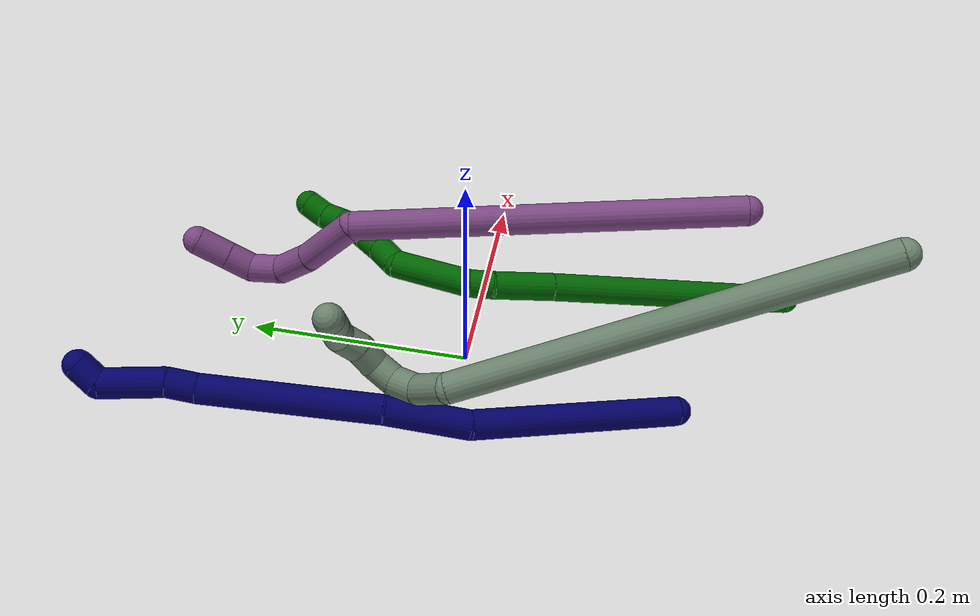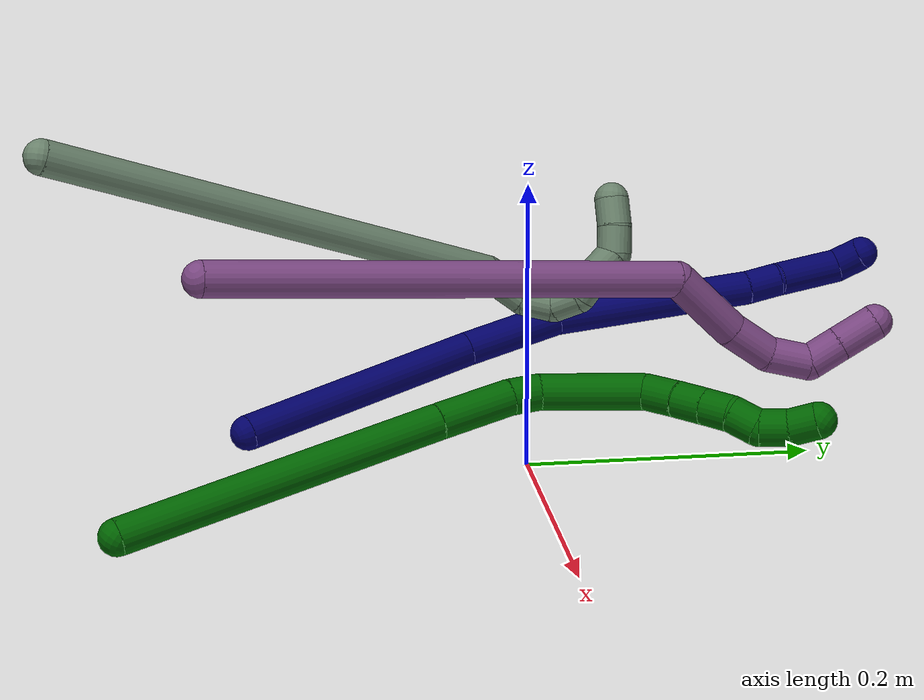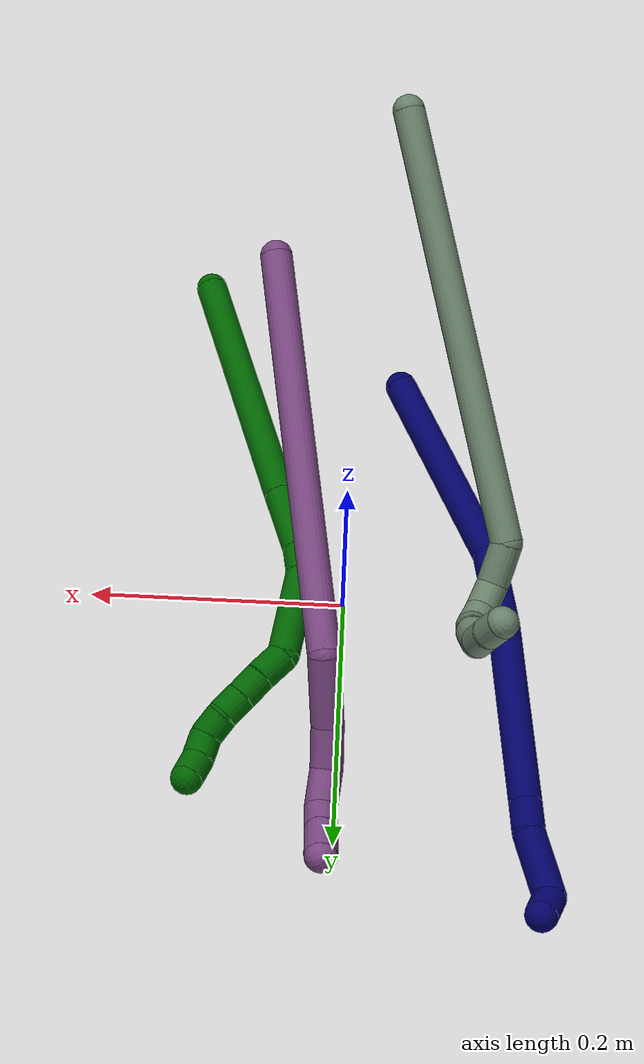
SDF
<sdf version="1.7">
 <world name="default">
  <model name="6">
   <static>0</static>
   <link name="6">
    <collision name="collision-cylinder-e_1_1_4">
     <pose>-0.00195 0.101689 -0.050878 -2.03471 -0.017151 0.027758</pose>
     <geometry><cylinder><radius>0.0125</radius><length>0.227447</length></cylinder></geometry>
     <surface>
      <friction><ode><mu>1.16</mu><mu2>1.16</mu2><slip1>0</slip1><slip2>0</slip2></ode></friction>
      <contact><ode><kp>1e+06</kp><kd>1</kd><max_vel>0</max_vel><min_depth>0.001</min_depth></ode></contact>
     </surface>
    </collision>
    <visual name="visual-cylinder-e_1_1_4">
     <pose>-0.00195 0.101689 -0.050878 -2.03471 -0.017151 0.027758</pose>
     <geometry><cylinder><radius>0.0125</radius><length>0.227447</length></cylinder></geometry>
     <material><ambient>0 0.392157 0.003922 1</ambient></material>
    </visual>
    <collision name="collision-cylinder-e_2_4_5">
     <pose>-0.005015 0.227575 -0.113925 -2.03676 -0.041133 0.066712</pose>
     <geometry><cylinder><radius>0.0125</radius><length>0.054216</length></cylinder></geometry>
     <surface>
      <friction><ode><mu>1.16</mu><mu2>1.16</mu2><slip1>0</slip1><slip2>0</slip2></ode></friction>
      <contact><ode><kp>1e+06</kp><kd>1</kd><max_vel>0</max_vel><min_depth>0.001</min_depth></ode></contact>
     </surface>
    </collision>
    <visual name="visual-cylinder-e_2_4_5">
     <pose>-0.005015 0.227575 -0.113925 -2.03676 -0.041133 0.066712</pose>
     <geometry><cylinder><radius>0.0125</radius><length>0.054216</length></cylinder></geometry>
     <material><ambient>0 0.392157 0.003922 1</ambient></material>
    </visual>
    <collision name="collision-cylinder-e_3_5_6">
     <pose>-0.006375 0.260324 -0.132549 -2.21745 -0.022864 0.045902</pose>
     <geometry><cylinder><radius>0.0125</radius><length>0.021433</length></cylinder></geometry>
     <surface>
      <friction><ode><mu>1.16</mu><mu2>1.16</mu2><slip1>0</slip1><slip2>0</slip2></ode></friction>
      <contact><ode><kp>1e+06</kp><kd>1</kd><max_vel>0</max_vel><min_depth>0.001</min_depth></ode></contact>
     </surface>
    </collision>
    <visual name="visual-cylinder-e_3_5_6">
     <pose>-0.006375 0.260324 -0.132549 -2.21745 -0.022864 0.045902</pose>
     <geometry><cylinder><radius>0.0125</radius><length>0.021433</length></cylinder></geometry>
     <material><ambient>0 0.392157 0.003922 1</ambient></material>
    </visual>
    <collision name="collision-cylinder-e_4_6_7">
     <pose>-0.00236 0.289609 -0.167507 -2.51268 0.120269 -0.366076</pose>
     <geometry><cylinder><radius>0.0125</radius><length>0.071008</length></cylinder></geometry>
     <surface>
      <friction><ode><mu>1.16</mu><mu2>1.16</mu2><slip1>0</slip1><slip2>0</slip2></ode></friction>
      <contact><ode><kp>1e+06</kp><kd>1</kd><max_vel>0</max_vel><min_depth>0.001</min_depth></ode></contact>
     </surface>
    </collision>
    <visual name="visual-cylinder-e_4_6_7">
     <pose>-0.00236 0.289609 -0.167507 -2.51268 0.120269 -0.366076</pose>
     <geometry><cylinder><radius>0.0125</radius><length>0.071008</length></cylinder></geometry>
     <material><ambient>0 0.392157 0.003922 1</ambient></material>
    </visual>
    <collision name="collision-cylinder-e_5_7_8">
     <pose>0.006979 0.311457 -0.207225 -3.04262 0.423475 -2.68871</pose>
     <geometry><cylinder><radius>0.0125</radius><length>0.024722</length></cylinder></geometry>
     <surface>
      <friction><ode><mu>1.16</mu><mu2>1.16</mu2><slip1>0</slip1><slip2>0</slip2></ode></friction>
      <contact><ode><kp>1e+06</kp><kd>1</kd><max_vel>0</max_vel><min_depth>0.001</min_depth></ode></contact>
     </surface>
    </collision>
    <visual name="visual-cylinder-e_5_7_8">
     <pose>0.006979 0.311457 -0.207225 -3.04262 0.423475 -2.68871</pose>
     <geometry><cylinder><radius>0.0125</radius><length>0.024722</length></cylinder></geometry>
     <material><ambient>0 0.392157 0.003922 1</ambient></material>
    </visual>
    <collision name="collision-cylinder-e_6_8_9">
     <pose>0.015746 0.313816 -0.228244 -3.01524 0.357119 -2.46733</pose>
     <geometry><cylinder><radius>0.0125</radius><length>0.021098</length></cylinder></geometry>
     <surface>
      <friction><ode><mu>1.16</mu><mu2>1.16</mu2><slip1>0</slip1><slip2>0</slip2></ode></friction>
      <contact><ode><kp>1e+06</kp><kd>1</kd><max_vel>0</max_vel><min_depth>0.001</min_depth></ode></contact>
     </surface>
    </collision>
    <visual name="visual-cylinder-e_6_8_9">
     <pose>0.015746 0.313816 -0.228244 -3.01524 0.357119 -2.46733</pose>
     <geometry><cylinder><radius>0.0125</radius><length>0.021098</length></cylinder></geometry>
     <material><ambient>0 0.392157 0.003922 1</ambient></material>
    </visual>
    <collision name="collision-cylinder-e_7_9_10">
     <pose>0.023033 0.316007 -0.247357 -3.04036 0.367275 -2.60903</pose>
     <geometry><cylinder><radius>0.0125</radius><length>0.02005</length></cylinder></geometry>
     <surface>
      <friction><ode><mu>1.16</mu><mu2>1.16</mu2><slip1>0</slip1><slip2>0</slip2></ode></friction>
      <contact><ode><kp>1e+06</kp><kd>1</kd><max_vel>0</max_vel><min_depth>0.001</min_depth></ode></contact>
     </surface>
    </collision>
    <visual name="visual-cylinder-e_7_9_10">
     <pose>0.023033 0.316007 -0.247357 -3.04036 0.367275 -2.60903</pose>
     <geometry><cylinder><radius>0.0125</radius><length>0.02005</length></cylinder></geometry>
     <material><ambient>0 0.392157 0.003922 1</ambient></material>
    </visual>
    <collision name="collision-cylinder-e_8_10_11">
     <pose>0.02785 0.317276 -0.266598 -3.10912 0.12189 -2.62147</pose>
     <geometry><cylinder><radius>0.0125</radius><length>0.020024</length></cylinder></geometry>
     <surface>
      <friction><ode><mu>1.16</mu><mu2>1.16</mu2><slip1>0</slip1><slip2>0</slip2></ode></friction>
      <contact><ode><kp>1e+06</kp><kd>1</kd><max_vel>0</max_vel><min_depth>0.001</min_depth></ode></contact>
     </surface>
    </collision>
    <visual name="visual-cylinder-e_8_10_11">
     <pose>0.02785 0.317276 -0.266598 -3.10912 0.12189 -2.62147</pose>
     <geometry><cylinder><radius>0.0125</radius><length>0.020024</length></cylinder></geometry>
     <material><ambient>0 0.392157 0.003922 1</ambient></material>
    </visual>
    <collision name="collision-cylinder-e_9_11_12">
     <pose>0.031095 0.322919 -0.284751 -2.56715 0.204137 -0.66754</pose>
     <geometry><cylinder><radius>0.0125</radius><length>0.020001</length></cylinder></geometry>
     <surface>
      <friction><ode><mu>1.16</mu><mu2>1.16</mu2><slip1>0</slip1><slip2>0</slip2></ode></friction>
      <contact><ode><kp>1e+06</kp><kd>1</kd><max_vel>0</max_vel><min_depth>0.001</min_depth></ode></contact>
     </surface>
    </collision>
    <visual name="visual-cylinder-e_9_11_12">
     <pose>0.031095 0.322919 -0.284751 -2.56715 0.204137 -0.66754</pose>
     <geometry><cylinder><radius>0.0125</radius><length>0.020001</length></cylinder></geometry>
     <material><ambient>0 0.392157 0.003922 1</ambient></material>
    </visual>
    <collision name="collision-cylinder-e_10_12_2">
     <pose>0.037906 0.333688 -0.299861 -2.47252 0.498732 -1.2646</pose>
     <geometry><cylinder><radius>0.0125</radius><length>0.020002</length></cylinder></geometry>
     <surface>
      <friction><ode><mu>1.16</mu><mu2>1.16</mu2><slip1>0</slip1><slip2>0</slip2></ode></friction>
      <contact><ode><kp>1e+06</kp><kd>1</kd><max_vel>0</max_vel><min_depth>0.001</min_depth></ode></contact>
     </surface>
    </collision>
    <visual name="visual-cylinder-e_10_12_2">
     <pose>0.037906 0.333688 -0.299861 -2.47252 0.498732 -1.2646</pose>
     <geometry><cylinder><radius>0.0125</radius><length>0.020002</length></cylinder></geometry>
     <material><ambient>0 0.392157 0.003922 1</ambient></material>
    </visual>
    <collision name="collision-sphere-2">
     <pose>0.042689 0.339135 -0.30675 0 -0 0</pose>
     <geometry><sphere><radius>0.0125</radius></sphere></geometry>
     <surface>
      <friction><ode><mu>1.16</mu><mu2>1.16</mu2><slip1>0</slip1><slip2>0</slip2></ode></friction>
      <contact><ode><kp>1e+06</kp><kd>1</kd><max_vel>0</max_vel><min_depth>0.001</min_depth></ode></contact>
     </surface>
    </collision>
    <visual name="visual-sphere-2">
     <pose>0.042689 0.339135 -0.30675 0 -0 0</pose>
     <geometry><sphere><radius>0.0125</radius></sphere></geometry>
     <material><ambient>0 0.392157 0.003922 1</ambient></material>
    </visual>
    <collision name="collision-sphere-12">
     <pose>0.033122 0.32824 -0.292972 0 -0 0</pose>
     <geometry><sphere><radius>0.0125</radius></sphere></geometry>
     <surface>
      <friction><ode><mu>1.16</mu><mu2>1.16</mu2><slip1>0</slip1><slip2>0</slip2></ode></friction>
      <contact><ode><kp>1e+06</kp><kd>1</kd><max_vel>0</max_vel><min_depth>0.001</min_depth></ode></contact>
     </surface>
    </collision>
    <visual name="visual-sphere-12">
     <pose>0.033122 0.32824 -0.292972 0 -0 0</pose>
     <geometry><sphere><radius>0.0125</radius></sphere></geometry>
     <material><ambient>0 0.392157 0.003922 1</ambient></material>
    </visual>
    <collision name="collision-sphere-11">
     <pose>0.029068 0.317598 -0.27653 0 -0 0</pose>
     <geometry><sphere><radius>0.0125</radius></sphere></geometry>
     <surface>
      <friction><ode><mu>1.16</mu><mu2>1.16</mu2><slip1>0</slip1><slip2>0</slip2></ode></friction>
      <contact><ode><kp>1e+06</kp><kd>1</kd><max_vel>0</max_vel><min_depth>0.001</min_depth></ode></contact>
     </surface>
    </collision>
    <visual name="visual-sphere-11">
     <pose>0.029068 0.317598 -0.27653 0 -0 0</pose>
     <geometry><sphere><radius>0.0125</radius></sphere></geometry>
     <material><ambient>0 0.392157 0.003922 1</ambient></material>
    </visual>
    <collision name="collision-sphere-10">
     <pose>0.026633 0.316953 -0.256665 0 -0 0</pose>
     <geometry><sphere><radius>0.0125</radius></sphere></geometry>
     <surface>
      <friction><ode><mu>1.16</mu><mu2>1.16</mu2><slip1>0</slip1><slip2>0</slip2></ode></friction>
      <contact><ode><kp>1e+06</kp><kd>1</kd><max_vel>0</max_vel><min_depth>0.001</min_depth></ode></contact>
     </surface>
    </collision>
    <visual name="visual-sphere-10">
     <pose>0.026633 0.316953 -0.256665 0 -0 0</pose>
     <geometry><sphere><radius>0.0125</radius></sphere></geometry>
     <material><ambient>0 0.392157 0.003922 1</ambient></material>
    </visual>
    <collision name="collision-sphere-9">
     <pose>0.019434 0.315062 -0.238048 0 -0 0</pose>
     <geometry><sphere><radius>0.0125</radius></sphere></geometry>
     <surface>
      <friction><ode><mu>1.16</mu><mu2>1.16</mu2><slip1>0</slip1><slip2>0</slip2></ode></friction>
      <contact><ode><kp>1e+06</kp><kd>1</kd><max_vel>0</max_vel><min_depth>0.001</min_depth></ode></contact>
     </surface>
    </collision>
    <visual name="visual-sphere-9">
     <pose>0.019434 0.315062 -0.238048 0 -0 0</pose>
     <geometry><sphere><radius>0.0125</radius></sphere></geometry>
     <material><ambient>0 0.392157 0.003922 1</ambient></material>
    </visual>
    <collision name="collision-sphere-4">
     <pose>-0.003901 0.203378 -0.101756 0 -0 0</pose>
     <geometry><sphere><radius>0.0125</radius></sphere></geometry>
     <surface>
      <friction><ode><mu>1.16</mu><mu2>1.16</mu2><slip1>0</slip1><slip2>0</slip2></ode></friction>
      <contact><ode><kp>1e+06</kp><kd>1</kd><max_vel>0</max_vel><min_depth>0.001</min_depth></ode></contact>
     </surface>
    </collision>
    <visual name="visual-sphere-4">
     <pose>-0.003901 0.203378 -0.101756 0 -0 0</pose>
     <geometry><sphere><radius>0.0125</radius></sphere></geometry>
     <material><ambient>0 0.392157 0.003922 1</ambient></material>
    </visual>
    <collision name="collision-sphere-1">
     <geometry><sphere><radius>0.0125</radius></sphere></geometry>
     <surface>
      <friction><ode><mu>1.16</mu><mu2>1.16</mu2><slip1>0</slip1><slip2>0</slip2></ode></friction>
      <contact><ode><kp>1e+06</kp><kd>1</kd><max_vel>0</max_vel><min_depth>0.001</min_depth></ode></contact>
     </surface>
    </collision>
    <visual name="visual-sphere-1">
     <geometry><sphere><radius>0.0125</radius></sphere></geometry>
     <material><ambient>0 0.392157 0.003922 1</ambient></material>
    </visual>
    <collision name="collision-sphere-8">
     <pose>0.012058 0.312571 -0.218439 0 -0 0</pose>
     <geometry><sphere><radius>0.0125</radius></sphere></geometry>
     <surface>
      <friction><ode><mu>1.16</mu><mu2>1.16</mu2><slip1>0</slip1><slip2>0</slip2></ode></friction>
      <contact><ode><kp>1e+06</kp><kd>1</kd><max_vel>0</max_vel><min_depth>0.001</min_depth></ode></contact>
     </surface>
    </collision>
    <visual name="visual-sphere-8">
     <pose>0.012058 0.312571 -0.218439 0 -0 0</pose>
     <geometry><sphere><radius>0.0125</radius></sphere></geometry>
     <material><ambient>0 0.392157 0.003922 1</ambient></material>
    </visual>
    <collision name="collision-sphere-5">
     <pose>-0.00613 0.251773 -0.126094 0 -0 0</pose>
     <geometry><sphere><radius>0.0125</radius></sphere></geometry>
     <surface>
      <friction><ode><mu>1.16</mu><mu2>1.16</mu2><slip1>0</slip1><slip2>0</slip2></ode></friction>
      <contact><ode><kp>1e+06</kp><kd>1</kd><max_vel>0</max_vel><min_depth>0.001</min_depth></ode></contact>
     </surface>
    </collision>
    <visual name="visual-sphere-5">
     <pose>-0.00613 0.251773 -0.126094 0 -0 0</pose>
     <geometry><sphere><radius>0.0125</radius></sphere></geometry>
     <material><ambient>0 0.392157 0.003922 1</ambient></material>
    </visual>
    <collision name="collision-sphere-6">
     <pose>-0.00662 0.268874 -0.139004 0 -0 0</pose>
     <geometry><sphere><radius>0.0125</radius></sphere></geometry>
     <surface>
      <friction><ode><mu>1.16</mu><mu2>1.16</mu2><slip1>0</slip1><slip2>0</slip2></ode></friction>
      <contact><ode><kp>1e+06</kp><kd>1</kd><max_vel>0</max_vel><min_depth>0.001</min_depth></ode></contact>
     </surface>
    </collision>
    <visual name="visual-sphere-6">
     <pose>-0.00662 0.268874 -0.139004 0 -0 0</pose>
     <geometry><sphere><radius>0.0125</radius></sphere></geometry>
     <material><ambient>0 0.392157 0.003922 1</ambient></material>
    </visual>
    <collision name="collision-sphere-7">
     <pose>0.001899 0.310344 -0.196011 0 -0 0</pose>
     <geometry><sphere><radius>0.0125</radius></sphere></geometry>
     <surface>
      <friction><ode><mu>1.16</mu><mu2>1.16</mu2><slip1>0</slip1><slip2>0</slip2></ode></friction>
      <contact><ode><kp>1e+06</kp><kd>1</kd><max_vel>0</max_vel><min_depth>0.001</min_depth></ode></contact>
     </surface>
    </collision>
    <visual name="visual-sphere-7">
     <pose>0.001899 0.310344 -0.196011 0 -0 0</pose>
     <geometry><sphere><radius>0.0125</radius></sphere></geometry>
     <material><ambient>0 0.392157 0.003922 1</ambient></material>
    </visual>
    <inertial>
     <pose>0.003769 0.203508 -0.128826 0 -0 0</pose>
     <mass>0.5</mass>
     <inertia>
      <ixx>0.001047</ixx>
      <ixy>0</ixy>
      <ixz>0</ixz>
      <iyy>-0.000431</iyy>
      <iyz>0</iyz>
      <izz>-0.000934</izz>
     </inertia>
    </inertial>
   </link>
   <pose>0.121433 -0.281398 0.011485 0.796916 -0.914163 0.032862</pose>
  </model>
  <model name="7">
   <static>0</static>
   <link name="7">
    <collision name="collision-cylinder-e_1_1_4">
     <pose>0.001406 0.002707 -0.090944 -3.11184 0.01545 -0.95787</pose>
     <geometry><cylinder><radius>0.0125</radius><length>0.181989</length></cylinder></geometry>
     <surface>
      <friction><ode><mu>1.16</mu><mu2>1.16</mu2><slip1>0</slip1><slip2>0</slip2></ode></friction>
      <contact><ode><kp>1e+06</kp><kd>1</kd><max_vel>0</max_vel><min_depth>0.001</min_depth></ode></contact>
     </surface>
    </collision>
    <visual name="visual-cylinder-e_1_1_4">
     <pose>0.001406 0.002707 -0.090944 -3.11184 0.01545 -0.95787</pose>
     <geometry><cylinder><radius>0.0125</radius><length>0.181989</length></cylinder></geometry>
     <material><ambient>0.003922 0 0.403922 1</ambient></material>
    </visual>
    <collision name="collision-cylinder-e_2_4_5">
     <pose>-0.003169 0.012465 -0.216175 -2.93875 -0.169223 1.38952</pose>
     <geometry><cylinder><radius>0.0125</radius><length>0.071026</length></cylinder></geometry>
     <surface>
      <friction><ode><mu>1.16</mu><mu2>1.16</mu2><slip1>0</slip1><slip2>0</slip2></ode></friction>
      <contact><ode><kp>1e+06</kp><kd>1</kd><max_vel>0</max_vel><min_depth>0.001</min_depth></ode></contact>
     </surface>
    </collision>
    <visual name="visual-cylinder-e_2_4_5">
     <pose>-0.003169 0.012465 -0.216175 -2.93875 -0.169223 1.38952</pose>
     <geometry><cylinder><radius>0.0125</radius><length>0.071026</length></cylinder></geometry>
     <material><ambient>0.003922 0 0.403922 1</ambient></material>
    </visual>
    <collision name="collision-cylinder-e_3_5_6">
     <pose>-0.013242 0.043683 -0.320807 -2.81069 -0.054958 0.326292</pose>
     <geometry><cylinder><radius>0.0125</radius><length>0.148985</length></cylinder></geometry>
     <surface>
      <friction><ode><mu>1.16</mu><mu2>1.16</mu2><slip1>0</slip1><slip2>0</slip2></ode></friction>
      <contact><ode><kp>1e+06</kp><kd>1</kd><max_vel>0</max_vel><min_depth>0.001</min_depth></ode></contact>
     </surface>
    </collision>
    <visual name="visual-cylinder-e_3_5_6">
     <pose>-0.013242 0.043683 -0.320807 -2.81069 -0.054958 0.326292</pose>
     <geometry><cylinder><radius>0.0125</radius><length>0.148985</length></cylinder></geometry>
     <material><ambient>0.003922 0 0.403922 1</ambient></material>
    </visual>
    <collision name="collision-cylinder-e_4_6_7">
     <pose>-0.019371 0.071312 -0.40292 -2.85542 -0.164552 1.03971</pose>
     <geometry><cylinder><radius>0.0125</radius><length>0.02487</length></cylinder></geometry>
     <surface>
      <friction><ode><mu>1.16</mu><mu2>1.16</mu2><slip1>0</slip1><slip2>0</slip2></ode></friction>
      <contact><ode><kp>1e+06</kp><kd>1</kd><max_vel>0</max_vel><min_depth>0.001</min_depth></ode></contact>
     </surface>
    </collision>
    <visual name="visual-cylinder-e_4_6_7">
     <pose>-0.019371 0.071312 -0.40292 -2.85542 -0.164552 1.03971</pose>
     <geometry><cylinder><radius>0.0125</radius><length>0.02487</length></cylinder></geometry>
     <material><ambient>0.003922 0 0.403922 1</ambient></material>
    </visual>
    <collision name="collision-cylinder-e_5_7_8">
     <pose>-0.020654 0.079248 -0.440237 -2.96824 0.029077 -0.331585</pose>
     <geometry><cylinder><radius>0.0125</radius><length>0.051896</length></cylinder></geometry>
     <surface>
      <friction><ode><mu>1.16</mu><mu2>1.16</mu2><slip1>0</slip1><slip2>0</slip2></ode></friction>
      <contact><ode><kp>1e+06</kp><kd>1</kd><max_vel>0</max_vel><min_depth>0.001</min_depth></ode></contact>
     </surface>
    </collision>
    <visual name="visual-cylinder-e_5_7_8">
     <pose>-0.020654 0.079248 -0.440237 -2.96824 0.029077 -0.331585</pose>
     <geometry><cylinder><radius>0.0125</radius><length>0.051896</length></cylinder></geometry>
     <material><ambient>0.003922 0 0.403922 1</ambient></material>
    </visual>
    <collision name="collision-cylinder-e_6_8_2">
     <pose>-0.026576 0.087536 -0.473106 -2.66129 -0.680137 1.93078</pose>
     <geometry><cylinder><radius>0.0125</radius><length>0.021235</length></cylinder></geometry>
     <surface>
      <friction><ode><mu>1.16</mu><mu2>1.16</mu2><slip1>0</slip1><slip2>0</slip2></ode></friction>
      <contact><ode><kp>1e+06</kp><kd>1</kd><max_vel>0</max_vel><min_depth>0.001</min_depth></ode></contact>
     </surface>
    </collision>
    <visual name="visual-cylinder-e_6_8_2">
     <pose>-0.026576 0.087536 -0.473106 -2.66129 -0.680137 1.93078</pose>
     <geometry><cylinder><radius>0.0125</radius><length>0.021235</length></cylinder></geometry>
     <material><ambient>0.003922 0 0.403922 1</ambient></material>
    </visual>
    <collision name="collision-sphere-2">
     <pose>-0.033254 0.09135 -0.480426 0 -0 0</pose>
     <geometry><sphere><radius>0.0125</radius></sphere></geometry>
     <surface>
      <friction><ode><mu>1.16</mu><mu2>1.16</mu2><slip1>0</slip1><slip2>0</slip2></ode></friction>
      <contact><ode><kp>1e+06</kp><kd>1</kd><max_vel>0</max_vel><min_depth>0.001</min_depth></ode></contact>
     </surface>
    </collision>
    <visual name="visual-sphere-2">
     <pose>-0.033254 0.09135 -0.480426 0 -0 0</pose>
     <geometry><sphere><radius>0.0125</radius></sphere></geometry>
     <material><ambient>0.003922 0 0.403922 1</ambient></material>
    </visual>
    <collision name="collision-sphere-4">
     <pose>0.002812 0.005413 -0.181887 0 -0 0</pose>
     <geometry><sphere><radius>0.0125</radius></sphere></geometry>
     <surface>
      <friction><ode><mu>1.16</mu><mu2>1.16</mu2><slip1>0</slip1><slip2>0</slip2></ode></friction>
      <contact><ode><kp>1e+06</kp><kd>1</kd><max_vel>0</max_vel><min_depth>0.001</min_depth></ode></contact>
     </surface>
    </collision>
    <visual name="visual-sphere-4">
     <pose>0.002812 0.005413 -0.181887 0 -0 0</pose>
     <geometry><sphere><radius>0.0125</radius></sphere></geometry>
     <material><ambient>0.003922 0 0.403922 1</ambient></material>
    </visual>
    <collision name="collision-sphere-1">
     <geometry><sphere><radius>0.0125</radius></sphere></geometry>
     <surface>
      <friction><ode><mu>1.16</mu><mu2>1.16</mu2><slip1>0</slip1><slip2>0</slip2></ode></friction>
      <contact><ode><kp>1e+06</kp><kd>1</kd><max_vel>0</max_vel><min_depth>0.001</min_depth></ode></contact>
     </surface>
    </collision>
    <visual name="visual-sphere-1">
     <geometry><sphere><radius>0.0125</radius></sphere></geometry>
     <material><ambient>0.003922 0 0.403922 1</ambient></material>
    </visual>
    <collision name="collision-sphere-8">
     <pose>-0.019899 0.083722 -0.465785 0 -0 0</pose>
     <geometry><sphere><radius>0.0125</radius></sphere></geometry>
     <surface>
      <friction><ode><mu>1.16</mu><mu2>1.16</mu2><slip1>0</slip1><slip2>0</slip2></ode></friction>
      <contact><ode><kp>1e+06</kp><kd>1</kd><max_vel>0</max_vel><min_depth>0.001</min_depth></ode></contact>
     </surface>
    </collision>
    <visual name="visual-sphere-8">
     <pose>-0.019899 0.083722 -0.465785 0 -0 0</pose>
     <geometry><sphere><radius>0.0125</radius></sphere></geometry>
     <material><ambient>0.003922 0 0.403922 1</ambient></material>
    </visual>
    <collision name="collision-sphere-5">
     <pose>-0.00915 0.019517 -0.250463 0 -0 0</pose>
     <geometry><sphere><radius>0.0125</radius></sphere></geometry>
     <surface>
      <friction><ode><mu>1.16</mu><mu2>1.16</mu2><slip1>0</slip1><slip2>0</slip2></ode></friction>
      <contact><ode><kp>1e+06</kp><kd>1</kd><max_vel>0</max_vel><min_depth>0.001</min_depth></ode></contact>
     </surface>
    </collision>
    <visual name="visual-sphere-5">
     <pose>-0.00915 0.019517 -0.250463 0 -0 0</pose>
     <geometry><sphere><radius>0.0125</radius></sphere></geometry>
     <material><ambient>0.003922 0 0.403922 1</ambient></material>
    </visual>
    <collision name="collision-sphere-6">
     <pose>-0.017334 0.067849 -0.391152 0 -0 0</pose>
     <geometry><sphere><radius>0.0125</radius></sphere></geometry>
     <surface>
      <friction><ode><mu>1.16</mu><mu2>1.16</mu2><slip1>0</slip1><slip2>0</slip2></ode></friction>
      <contact><ode><kp>1e+06</kp><kd>1</kd><max_vel>0</max_vel><min_depth>0.001</min_depth></ode></contact>
     </surface>
    </collision>
    <visual name="visual-sphere-6">
     <pose>-0.017334 0.067849 -0.391152 0 -0 0</pose>
     <geometry><sphere><radius>0.0125</radius></sphere></geometry>
     <material><ambient>0.003922 0 0.403922 1</ambient></material>
    </visual>
    <collision name="collision-sphere-7">
     <pose>-0.021408 0.074775 -0.414689 0 -0 0</pose>
     <geometry><sphere><radius>0.0125</radius></sphere></geometry>
     <surface>
      <friction><ode><mu>1.16</mu><mu2>1.16</mu2><slip1>0</slip1><slip2>0</slip2></ode></friction>
      <contact><ode><kp>1e+06</kp><kd>1</kd><max_vel>0</max_vel><min_depth>0.001</min_depth></ode></contact>
     </surface>
    </collision>
    <visual name="visual-sphere-7">
     <pose>-0.021408 0.074775 -0.414689 0 -0 0</pose>
     <geometry><sphere><radius>0.0125</radius></sphere></geometry>
     <material><ambient>0.003922 0 0.403922 1</ambient></material>
    </visual>
    <inertial>
     <pose>-0.00812 0.031262 -0.245227 0 -0 0</pose>
     <mass>0.5</mass>
     <inertia>
      <ixx>0.00028</ixx>
      <ixy>0</ixy>
      <ixz>0</ixz>
      <iyy>-0.00085</iyy>
      <iyz>0</iyz>
      <izz>-0.00014</izz>
     </inertia>
    </inertial>
   </link>
   <pose>-0.03936 -0.190235 0.019337 -1.96765 1.03826 -3.05514</pose>
  </model>
  <model name="17">
   <static>0</static>
   <link name="17">
    <collision name="collision-cylinder-e_1_1_4">
     <pose>-0.039162 0.167371 -0.008106 -1.61919 -0.229589 0.24087</pose>
     <geometry><cylinder><radius>0.0125</radius><length>0.344165</length></cylinder></geometry>
     <surface>
      <friction><ode><mu>1.16</mu><mu2>1.16</mu2><slip1>0</slip1><slip2>0</slip2></ode></friction>
      <contact><ode><kp>1e+06</kp><kd>1</kd><max_vel>0</max_vel><min_depth>0.001</min_depth></ode></contact>
     </surface>
    </collision>
    <visual name="visual-cylinder-e_1_1_4">
     <pose>-0.039162 0.167371 -0.008106 -1.61919 -0.229589 0.24087</pose>
     <geometry><cylinder><radius>0.0125</radius><length>0.344165</length></cylinder></geometry>
     <material><ambient>0.415686 0.509804 0.423529 1</ambient></material>
    </visual>
    <collision name="collision-cylinder-e_2_4_5">
     <pose>-0.075658 0.349125 -0.02389 -2.06115 0.162117 -0.26927</pose>
     <geometry><cylinder><radius>0.0125</radius><length>0.033042</length></cylinder></geometry>
     <surface>
      <friction><ode><mu>1.16</mu><mu2>1.16</mu2><slip1>0</slip1><slip2>0</slip2></ode></friction>
      <contact><ode><kp>1e+06</kp><kd>1</kd><max_vel>0</max_vel><min_depth>0.001</min_depth></ode></contact>
     </surface>
    </collision>
    <visual name="visual-cylinder-e_2_4_5">
     <pose>-0.075658 0.349125 -0.02389 -2.06115 0.162117 -0.26927</pose>
     <geometry><cylinder><radius>0.0125</radius><length>0.033042</length></cylinder></geometry>
     <material><ambient>0.415686 0.509804 0.423529 1</ambient></material>
    </visual>
    <collision name="collision-cylinder-e_3_5_6">
     <pose>-0.068315 0.37375 -0.0329 -1.70011 0.425152 -0.481898</pose>
     <geometry><cylinder><radius>0.0125</radius><length>0.022674</length></cylinder></geometry>
     <surface>
      <friction><ode><mu>1.16</mu><mu2>1.16</mu2><slip1>0</slip1><slip2>0</slip2></ode></friction>
      <contact><ode><kp>1e+06</kp><kd>1</kd><max_vel>0</max_vel><min_depth>0.001</min_depth></ode></contact>
     </surface>
    </collision>
    <visual name="visual-cylinder-e_3_5_6">
     <pose>-0.068315 0.37375 -0.0329 -1.70011 0.425152 -0.481898</pose>
     <geometry><cylinder><radius>0.0125</radius><length>0.022674</length></cylinder></geometry>
     <material><ambient>0.415686 0.509804 0.423529 1</ambient></material>
    </visual>
    <collision name="collision-cylinder-e_4_6_7">
     <pose>-0.057839 0.391189 -0.030323 -1.07324 0.616176 -0.374158</pose>
     <geometry><cylinder><radius>0.0125</radius><length>0.020071</length></cylinder></geometry>
     <surface>
      <friction><ode><mu>1.16</mu><mu2>1.16</mu2><slip1>0</slip1><slip2>0</slip2></ode></friction>
      <contact><ode><kp>1e+06</kp><kd>1</kd><max_vel>0</max_vel><min_depth>0.001</min_depth></ode></contact>
     </surface>
    </collision>
    <visual name="visual-cylinder-e_4_6_7">
     <pose>-0.057839 0.391189 -0.030323 -1.07324 0.616176 -0.374158</pose>
     <geometry><cylinder><radius>0.0125</radius><length>0.020071</length></cylinder></geometry>
     <material><ambient>0.415686 0.509804 0.423529 1</ambient></material>
    </visual>
    <collision name="collision-cylinder-e_5_7_8">
     <pose>-0.047958 0.402213 -0.018114 -0.432089 0.420007 -0.09349</pose>
     <geometry><cylinder><radius>0.0125</radius><length>0.020021</length></cylinder></geometry>
     <surface>
      <friction><ode><mu>1.16</mu><mu2>1.16</mu2><slip1>0</slip1><slip2>0</slip2></ode></friction>
      <contact><ode><kp>1e+06</kp><kd>1</kd><max_vel>0</max_vel><min_depth>0.001</min_depth></ode></contact>
     </surface>
    </collision>
    <visual name="visual-cylinder-e_5_7_8">
     <pose>-0.047958 0.402213 -0.018114 -0.432089 0.420007 -0.09349</pose>
     <geometry><cylinder><radius>0.0125</radius><length>0.020021</length></cylinder></geometry>
     <material><ambient>0.415686 0.509804 0.423529 1</ambient></material>
    </visual>
    <collision name="collision-cylinder-e_6_8_9">
     <pose>-0.041862 0.411579 -0.001724 -0.600292 0.202561 -0.062887</pose>
     <geometry><cylinder><radius>0.0125</radius><length>0.020016</length></cylinder></geometry>
     <surface>
      <friction><ode><mu>1.16</mu><mu2>1.16</mu2><slip1>0</slip1><slip2>0</slip2></ode></friction>
      <contact><ode><kp>1e+06</kp><kd>1</kd><max_vel>0</max_vel><min_depth>0.001</min_depth></ode></contact>
     </surface>
    </collision>
    <visual name="visual-cylinder-e_6_8_9">
     <pose>-0.041862 0.411579 -0.001724 -0.600292 0.202561 -0.062887</pose>
     <geometry><cylinder><radius>0.0125</radius><length>0.020016</length></cylinder></geometry>
     <material><ambient>0.415686 0.509804 0.423529 1</ambient></material>
    </visual>
    <collision name="collision-cylinder-e_7_9_10">
     <pose>-0.039418 0.415847 0.016278 0.127362 0.043034 0.002745</pose>
     <geometry><cylinder><radius>0.0125</radius><length>0.020005</length></cylinder></geometry>
     <surface>
      <friction><ode><mu>1.16</mu><mu2>1.16</mu2><slip1>0</slip1><slip2>0</slip2></ode></friction>
      <contact><ode><kp>1e+06</kp><kd>1</kd><max_vel>0</max_vel><min_depth>0.001</min_depth></ode></contact>
     </surface>
    </collision>
    <visual name="visual-cylinder-e_7_9_10">
     <pose>-0.039418 0.415847 0.016278 0.127362 0.043034 0.002745</pose>
     <geometry><cylinder><radius>0.0125</radius><length>0.020005</length></cylinder></geometry>
     <material><ambient>0.415686 0.509804 0.423529 1</ambient></material>
    </visual>
    <collision name="collision-cylinder-e_8_10_2">
     <pose>-0.040068 0.412616 0.035939 0.198621 -0.108182 -0.010789</pose>
     <geometry><cylinder><radius>0.0125</radius><length>0.020005</length></cylinder></geometry>
     <surface>
      <friction><ode><mu>1.16</mu><mu2>1.16</mu2><slip1>0</slip1><slip2>0</slip2></ode></friction>
      <contact><ode><kp>1e+06</kp><kd>1</kd><max_vel>0</max_vel><min_depth>0.001</min_depth></ode></contact>
     </surface>
    </collision>
    <visual name="visual-cylinder-e_8_10_2">
     <pose>-0.040068 0.412616 0.035939 0.198621 -0.108182 -0.010789</pose>
     <geometry><cylinder><radius>0.0125</radius><length>0.020005</length></cylinder></geometry>
     <material><ambient>0.415686 0.509804 0.423529 1</ambient></material>
    </visual>
    <collision name="collision-sphere-2">
     <pose>-0.041148 0.410654 0.045687 0 -0 0</pose>
     <geometry><sphere><radius>0.0125</radius></sphere></geometry>
     <surface>
      <friction><ode><mu>1.16</mu><mu2>1.16</mu2><slip1>0</slip1><slip2>0</slip2></ode></friction>
      <contact><ode><kp>1e+06</kp><kd>1</kd><max_vel>0</max_vel><min_depth>0.001</min_depth></ode></contact>
     </surface>
    </collision>
    <visual name="visual-sphere-2">
     <pose>-0.041148 0.410654 0.045687 0 -0 0</pose>
     <geometry><sphere><radius>0.0125</radius></sphere></geometry>
     <material><ambient>0.415686 0.509804 0.423529 1</ambient></material>
    </visual>
    <collision name="collision-sphere-10">
     <pose>-0.038988 0.414578 0.02619 0 -0 0</pose>
     <geometry><sphere><radius>0.0125</radius></sphere></geometry>
     <surface>
      <friction><ode><mu>1.16</mu><mu2>1.16</mu2><slip1>0</slip1><slip2>0</slip2></ode></friction>
      <contact><ode><kp>1e+06</kp><kd>1</kd><max_vel>0</max_vel><min_depth>0.001</min_depth></ode></contact>
     </surface>
    </collision>
    <visual name="visual-sphere-10">
     <pose>-0.038988 0.414578 0.02619 0 -0 0</pose>
     <geometry><sphere><radius>0.0125</radius></sphere></geometry>
     <material><ambient>0.415686 0.509804 0.423529 1</ambient></material>
    </visual>
    <collision name="collision-sphere-9">
     <pose>-0.039849 0.417117 0.006366 0 -0 0</pose>
     <geometry><sphere><radius>0.0125</radius></sphere></geometry>
     <surface>
      <friction><ode><mu>1.16</mu><mu2>1.16</mu2><slip1>0</slip1><slip2>0</slip2></ode></friction>
      <contact><ode><kp>1e+06</kp><kd>1</kd><max_vel>0</max_vel><min_depth>0.001</min_depth></ode></contact>
     </surface>
    </collision>
    <visual name="visual-sphere-9">
     <pose>-0.039849 0.417117 0.006366 0 -0 0</pose>
     <geometry><sphere><radius>0.0125</radius></sphere></geometry>
     <material><ambient>0.415686 0.509804 0.423529 1</ambient></material>
    </visual>
    <collision name="collision-sphere-4">
     <pose>-0.078324 0.334742 -0.016212 0 -0 0</pose>
     <geometry><sphere><radius>0.0125</radius></sphere></geometry>
     <surface>
      <friction><ode><mu>1.16</mu><mu2>1.16</mu2><slip1>0</slip1><slip2>0</slip2></ode></friction>
      <contact><ode><kp>1e+06</kp><kd>1</kd><max_vel>0</max_vel><min_depth>0.001</min_depth></ode></contact>
     </surface>
    </collision>
    <visual name="visual-sphere-4">
     <pose>-0.078324 0.334742 -0.016212 0 -0 0</pose>
     <geometry><sphere><radius>0.0125</radius></sphere></geometry>
     <material><ambient>0.415686 0.509804 0.423529 1</ambient></material>
    </visual>
    <collision name="collision-sphere-1">
     <geometry><sphere><radius>0.0125</radius></sphere></geometry>
     <surface>
      <friction><ode><mu>1.16</mu><mu2>1.16</mu2><slip1>0</slip1><slip2>0</slip2></ode></friction>
      <contact><ode><kp>1e+06</kp><kd>1</kd><max_vel>0</max_vel><min_depth>0.001</min_depth></ode></contact>
     </surface>
    </collision>
    <visual name="visual-sphere-1">
     <geometry><sphere><radius>0.0125</radius></sphere></geometry>
     <material><ambient>0.415686 0.509804 0.423529 1</ambient></material>
    </visual>
    <collision name="collision-sphere-8">
     <pose>-0.043876 0.406041 -0.009813 0 -0 0</pose>
     <geometry><sphere><radius>0.0125</radius></sphere></geometry>
     <surface>
      <friction><ode><mu>1.16</mu><mu2>1.16</mu2><slip1>0</slip1><slip2>0</slip2></ode></friction>
      <contact><ode><kp>1e+06</kp><kd>1</kd><max_vel>0</max_vel><min_depth>0.001</min_depth></ode></contact>
     </surface>
    </collision>
    <visual name="visual-sphere-8">
     <pose>-0.043876 0.406041 -0.009813 0 -0 0</pose>
     <geometry><sphere><radius>0.0125</radius></sphere></geometry>
     <material><ambient>0.415686 0.509804 0.423529 1</ambient></material>
    </visual>
    <collision name="collision-sphere-5">
     <pose>-0.072991 0.363508 -0.031568 0 -0 0</pose>
     <geometry><sphere><radius>0.0125</radius></sphere></geometry>
     <surface>
      <friction><ode><mu>1.16</mu><mu2>1.16</mu2><slip1>0</slip1><slip2>0</slip2></ode></friction>
      <contact><ode><kp>1e+06</kp><kd>1</kd><max_vel>0</max_vel><min_depth>0.001</min_depth></ode></contact>
     </surface>
    </collision>
    <visual name="visual-sphere-5">
     <pose>-0.072991 0.363508 -0.031568 0 -0 0</pose>
     <geometry><sphere><radius>0.0125</radius></sphere></geometry>
     <material><ambient>0.415686 0.509804 0.423529 1</ambient></material>
    </visual>
    <collision name="collision-sphere-6">
     <pose>-0.063639 0.383992 -0.034232 0 -0 0</pose>
     <geometry><sphere><radius>0.0125</radius></sphere></geometry>
     <surface>
      <friction><ode><mu>1.16</mu><mu2>1.16</mu2><slip1>0</slip1><slip2>0</slip2></ode></friction>
      <contact><ode><kp>1e+06</kp><kd>1</kd><max_vel>0</max_vel><min_depth>0.001</min_depth></ode></contact>
     </surface>
    </collision>
    <visual name="visual-sphere-6">
     <pose>-0.063639 0.383992 -0.034232 0 -0 0</pose>
     <geometry><sphere><radius>0.0125</radius></sphere></geometry>
     <material><ambient>0.415686 0.509804 0.423529 1</ambient></material>
    </visual>
    <collision name="collision-sphere-7">
     <pose>-0.05204 0.398385 -0.026414 0 -0 0</pose>
     <geometry><sphere><radius>0.0125</radius></sphere></geometry>
     <surface>
      <friction><ode><mu>1.16</mu><mu2>1.16</mu2><slip1>0</slip1><slip2>0</slip2></ode></friction>
      <contact><ode><kp>1e+06</kp><kd>1</kd><max_vel>0</max_vel><min_depth>0.001</min_depth></ode></contact>
     </surface>
    </collision>
    <visual name="visual-sphere-7">
     <pose>-0.05204 0.398385 -0.026414 0 -0 0</pose>
     <geometry><sphere><radius>0.0125</radius></sphere></geometry>
     <material><ambient>0.415686 0.509804 0.423529 1</ambient></material>
    </visual>
    <inertial>
     <pose>-0.044152 0.236659 -0.008573 0 -0 0</pose>
     <mass>0.5</mass>
     <inertia>
      <ixx>0.004024</ixx>
      <ixy>0</ixy>
      <ixz>0</ixz>
      <iyy>0.000851</iyy>
      <iyz>0</iyz>
      <izz>-0.002548</izz>
     </inertia>
    </inertial>
   </link>
   <pose>-0.034031 -0.321407 0.221816 -0.239438 -0.368751 0.154365</pose>
  </model>
  <model name="20">
   <static>0</static>
   <link name="20">
    <collision name="collision-cylinder-e_1_1_4">
     <pose>-0.049264 0.137371 -0.075043 -2.07078 -0.304905 0.506879</pose>
     <geometry><cylinder><radius>0.0125</radius><length>0.328202</length></cylinder></geometry>
     <surface>
      <friction><ode><mu>1.16</mu><mu2>1.16</mu2><slip1>0</slip1><slip2>0</slip2></ode></friction>
      <contact><ode><kp>1e+06</kp><kd>1</kd><max_vel>0</max_vel><min_depth>0.001</min_depth></ode></contact>
     </surface>
    </collision>
    <visual name="visual-cylinder-e_1_1_4">
     <pose>-0.049264 0.137371 -0.075043 -2.07078 -0.304905 0.506879</pose>
     <geometry><cylinder><radius>0.0125</radius><length>0.328202</length></cylinder></geometry>
     <material><ambient>0.478431 0.278431 0.509804 1</ambient></material>
    </visual>
    <collision name="collision-cylinder-e_2_4_5">
     <pose>-0.093051 0.289903 -0.172743 -2.55188 0.19824 -0.632876</pose>
     <geometry><cylinder><radius>0.0125</radius><length>0.055612</length></cylinder></geometry>
     <surface>
      <friction><ode><mu>1.16</mu><mu2>1.16</mu2><slip1>0</slip1><slip2>0</slip2></ode></friction>
      <contact><ode><kp>1e+06</kp><kd>1</kd><max_vel>0</max_vel><min_depth>0.001</min_depth></ode></contact>
     </surface>
    </collision>
    <visual name="visual-cylinder-e_2_4_5">
     <pose>-0.093051 0.289903 -0.172743 -2.55188 0.19824 -0.632876</pose>
     <geometry><cylinder><radius>0.0125</radius><length>0.055612</length></cylinder></geometry>
     <material><ambient>0.478431 0.278431 0.509804 1</ambient></material>
    </visual>
    <collision name="collision-cylinder-e_3_5_6">
     <pose>-0.085217 0.316282 -0.207211 -2.38189 0.143738 -0.356815</pose>
     <geometry><cylinder><radius>0.0125</radius><length>0.032919</length></cylinder></geometry>
     <surface>
      <friction><ode><mu>1.16</mu><mu2>1.16</mu2><slip1>0</slip1><slip2>0</slip2></ode></friction>
      <contact><ode><kp>1e+06</kp><kd>1</kd><max_vel>0</max_vel><min_depth>0.001</min_depth></ode></contact>
     </surface>
    </collision>
    <visual name="visual-cylinder-e_3_5_6">
     <pose>-0.085217 0.316282 -0.207211 -2.38189 0.143738 -0.356815</pose>
     <geometry><cylinder><radius>0.0125</radius><length>0.032919</length></cylinder></geometry>
     <material><ambient>0.478431 0.278431 0.509804 1</ambient></material>
    </visual>
    <collision name="collision-cylinder-e_4_6_7">
     <pose>-0.083185 0.341056 -0.225278 -2.0032 -0.021842 0.034135</pose>
     <geometry><cylinder><radius>0.0125</radius><length>0.029865</length></cylinder></geometry>
     <surface>
      <friction><ode><mu>1.16</mu><mu2>1.16</mu2><slip1>0</slip1><slip2>0</slip2></ode></friction>
      <contact><ode><kp>1e+06</kp><kd>1</kd><max_vel>0</max_vel><min_depth>0.001</min_depth></ode></contact>
     </surface>
    </collision>
    <visual name="visual-cylinder-e_4_6_7">
     <pose>-0.083185 0.341056 -0.225278 -2.0032 -0.021842 0.034135</pose>
     <geometry><cylinder><radius>0.0125</radius><length>0.029865</length></cylinder></geometry>
     <material><ambient>0.478431 0.278431 0.509804 1</ambient></material>
    </visual>
    <collision name="collision-cylinder-e_5_7_8">
     <pose>-0.090123 0.364777 -0.23028 -1.44807 -0.573161 0.509817</pose>
     <geometry><cylinder><radius>0.0125</radius><length>0.024383</length></cylinder></geometry>
     <surface>
      <friction><ode><mu>1.16</mu><mu2>1.16</mu2><slip1>0</slip1><slip2>0</slip2></ode></friction>
      <contact><ode><kp>1e+06</kp><kd>1</kd><max_vel>0</max_vel><min_depth>0.001</min_depth></ode></contact>
     </surface>
    </collision>
    <visual name="visual-cylinder-e_5_7_8">
     <pose>-0.090123 0.364777 -0.23028 -1.44807 -0.573161 0.509817</pose>
     <geometry><cylinder><radius>0.0125</radius><length>0.024383</length></cylinder></geometry>
     <material><ambient>0.478431 0.278431 0.509804 1</ambient></material>
    </visual>
    <collision name="collision-cylinder-e_6_8_2">
     <pose>-0.104494 0.387112 -0.227536 -1.44892 -0.564319 0.502272</pose>
     <geometry><cylinder><radius>0.0125</radius><length>0.029019</length></cylinder></geometry>
     <surface>
      <friction><ode><mu>1.16</mu><mu2>1.16</mu2><slip1>0</slip1><slip2>0</slip2></ode></friction>
      <contact><ode><kp>1e+06</kp><kd>1</kd><max_vel>0</max_vel><min_depth>0.001</min_depth></ode></contact>
     </surface>
    </collision>
    <visual name="visual-cylinder-e_6_8_2">
     <pose>-0.104494 0.387112 -0.227536 -1.44892 -0.564319 0.502272</pose>
     <geometry><cylinder><radius>0.0125</radius><length>0.029019</length></cylinder></geometry>
     <material><ambient>0.478431 0.278431 0.509804 1</ambient></material>
    </visual>
    <collision name="collision-sphere-2">
     <pose>-0.112255 0.399281 -0.226045 0 -0 0</pose>
     <geometry><sphere><radius>0.0125</radius></sphere></geometry>
     <surface>
      <friction><ode><mu>1.16</mu><mu2>1.16</mu2><slip1>0</slip1><slip2>0</slip2></ode></friction>
      <contact><ode><kp>1e+06</kp><kd>1</kd><max_vel>0</max_vel><min_depth>0.001</min_depth></ode></contact>
     </surface>
    </collision>
    <visual name="visual-sphere-2">
     <pose>-0.112255 0.399281 -0.226045 0 -0 0</pose>
     <geometry><sphere><radius>0.0125</radius></sphere></geometry>
     <material><ambient>0.478431 0.278431 0.509804 1</ambient></material>
    </visual>
    <collision name="collision-sphere-4">
     <pose>-0.098527 0.274742 -0.150086 0 -0 0</pose>
     <geometry><sphere><radius>0.0125</radius></sphere></geometry>
     <surface>
      <friction><ode><mu>1.16</mu><mu2>1.16</mu2><slip1>0</slip1><slip2>0</slip2></ode></friction>
      <contact><ode><kp>1e+06</kp><kd>1</kd><max_vel>0</max_vel><min_depth>0.001</min_depth></ode></contact>
     </surface>
    </collision>
    <visual name="visual-sphere-4">
     <pose>-0.098527 0.274742 -0.150086 0 -0 0</pose>
     <geometry><sphere><radius>0.0125</radius></sphere></geometry>
     <material><ambient>0.478431 0.278431 0.509804 1</ambient></material>
    </visual>
    <collision name="collision-sphere-1">
     <geometry><sphere><radius>0.0125</radius></sphere></geometry>
     <surface>
      <friction><ode><mu>1.16</mu><mu2>1.16</mu2><slip1>0</slip1><slip2>0</slip2></ode></friction>
      <contact><ode><kp>1e+06</kp><kd>1</kd><max_vel>0</max_vel><min_depth>0.001</min_depth></ode></contact>
     </surface>
    </collision>
    <visual name="visual-sphere-1">
     <geometry><sphere><radius>0.0125</radius></sphere></geometry>
     <material><ambient>0.478431 0.278431 0.509804 1</ambient></material>
    </visual>
    <collision name="collision-sphere-8">
     <pose>-0.096734 0.374943 -0.229026 0 -0 0</pose>
     <geometry><sphere><radius>0.0125</radius></sphere></geometry>
     <surface>
      <friction><ode><mu>1.16</mu><mu2>1.16</mu2><slip1>0</slip1><slip2>0</slip2></ode></friction>
      <contact><ode><kp>1e+06</kp><kd>1</kd><max_vel>0</max_vel><min_depth>0.001</min_depth></ode></contact>
     </surface>
    </collision>
    <visual name="visual-sphere-8">
     <pose>-0.096734 0.374943 -0.229026 0 -0 0</pose>
     <geometry><sphere><radius>0.0125</radius></sphere></geometry>
     <material><ambient>0.478431 0.278431 0.509804 1</ambient></material>
    </visual>
    <collision name="collision-sphere-5">
     <pose>-0.087575 0.305063 -0.195401 0 -0 0</pose>
     <geometry><sphere><radius>0.0125</radius></sphere></geometry>
     <surface>
      <friction><ode><mu>1.16</mu><mu2>1.16</mu2><slip1>0</slip1><slip2>0</slip2></ode></friction>
      <contact><ode><kp>1e+06</kp><kd>1</kd><max_vel>0</max_vel><min_depth>0.001</min_depth></ode></contact>
     </surface>
    </collision>
    <visual name="visual-sphere-5">
     <pose>-0.087575 0.305063 -0.195401 0 -0 0</pose>
     <geometry><sphere><radius>0.0125</radius></sphere></geometry>
     <material><ambient>0.478431 0.278431 0.509804 1</ambient></material>
    </visual>
    <collision name="collision-sphere-6">
     <pose>-0.082859 0.327501 -0.219022 0 -0 0</pose>
     <geometry><sphere><radius>0.0125</radius></sphere></geometry>
     <surface>
      <friction><ode><mu>1.16</mu><mu2>1.16</mu2><slip1>0</slip1><slip2>0</slip2></ode></friction>
      <contact><ode><kp>1e+06</kp><kd>1</kd><max_vel>0</max_vel><min_depth>0.001</min_depth></ode></contact>
     </surface>
    </collision>
    <visual name="visual-sphere-6">
     <pose>-0.082859 0.327501 -0.219022 0 -0 0</pose>
     <geometry><sphere><radius>0.0125</radius></sphere></geometry>
     <material><ambient>0.478431 0.278431 0.509804 1</ambient></material>
    </visual>
    <collision name="collision-sphere-7">
     <pose>-0.083511 0.354611 -0.231534 0 -0 0</pose>
     <geometry><sphere><radius>0.0125</radius></sphere></geometry>
     <surface>
      <friction><ode><mu>1.16</mu><mu2>1.16</mu2><slip1>0</slip1><slip2>0</slip2></ode></friction>
      <contact><ode><kp>1e+06</kp><kd>1</kd><max_vel>0</max_vel><min_depth>0.001</min_depth></ode></contact>
     </surface>
    </collision>
    <visual name="visual-sphere-7">
     <pose>-0.083511 0.354611 -0.231534 0 -0 0</pose>
     <geometry><sphere><radius>0.0125</radius></sphere></geometry>
     <material><ambient>0.478431 0.278431 0.509804 1</ambient></material>
    </visual>
    <inertial>
     <pose>-0.063725 0.203865 -0.120006 0 -0 0</pose>
     <mass>0.5</mass>
     <inertia>
      <ixx>0.003844</ixx>
      <ixy>0</ixy>
      <ixz>0</ixz>
      <iyy>0.000519</iyy>
      <iyz>0</iyz>
      <izz>-0.001627</izz>
     </inertia>
    </inertial>
   </link>
   <pose>0.063624 -0.221878 0.161662 0.135195 0.657182 -0.305345</pose>
  </model>
 </world>
</sdf>
